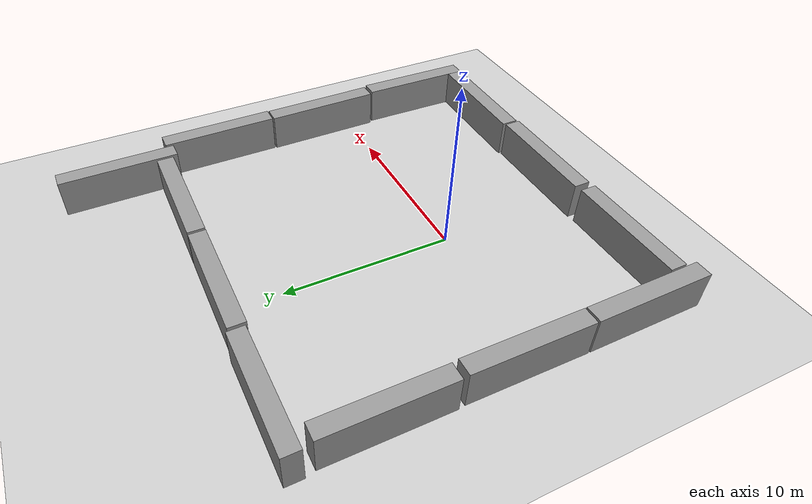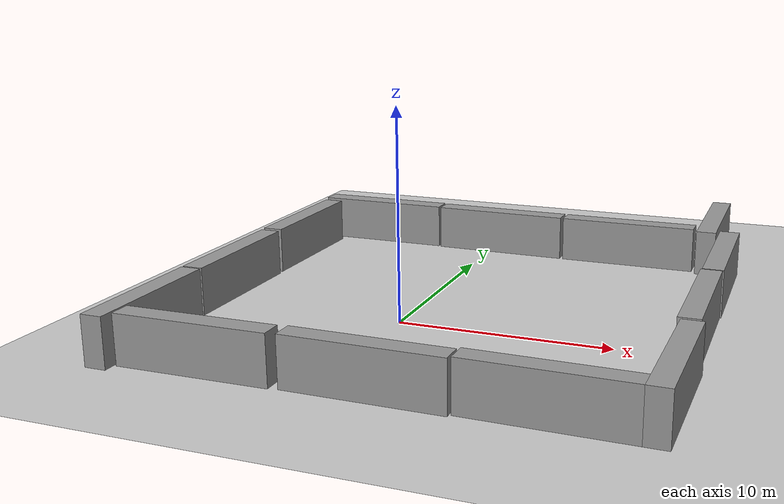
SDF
<sdf version="1.6">
 <world name="default">
  <light name="sun" type="directional">
   <pose>0 0 10 0 -0 0</pose>
   <diffuse>0.8 0.8 0.8 1</diffuse>
   <specular>0.2 0.2 0.2 1</specular>
   <attenuation>
    <range>1000</range>
    <constant>0.9</constant>
    <linear>0.01</linear>
    <quadratic>0.001</quadratic>
   </attenuation>
   <direction>-0.5 0.1 -0.9</direction>
  </light>
  <model name="ground_plane">
   <static>1</static>
   <link name="link">
    <collision name="collision">
     <geometry><plane><normal>0 0 1</normal><size>100 100</size></plane></geometry>
     <surface><friction><ode><mu>100</mu><mu2>50</mu2></ode></friction></surface>
    </collision>
    <visual name="visual">
     <cast_shadows>0</cast_shadows>
     <geometry><plane><normal>0 0 1</normal><size>100 100</size></plane></geometry>
     <material>
      <script><uri>file://media/materials/scripts/gazebo.material</uri><name>Gazebo/Grey</name></script>
     </material>
    </visual>
   </link>
  </model>
  <gravity>0 0 -9.8</gravity>
  <magnetic_field>6e-06 2.3e-05 -4.2e-05</magnetic_field>
  <atmosphere type="adiabatic"/>
  <physics name="default_physics" default="0" type="ode">
   <max_step_size>0.001</max_step_size>
   <real_time_factor>1</real_time_factor>
   <real_time_update_rate>1000</real_time_update_rate>
  </physics>
  <scene><ambient>0.4 0.4 0.4 1</ambient><background>0.7 0.7 0.7 1</background><shadows>1</shadows></scene>
  <spherical_coordinates>
   <surface_model>EARTH_WGS84</surface_model>
   <latitude_deg>0</latitude_deg>
   <longitude_deg>0</longitude_deg>
   <elevation>0</elevation>
   <heading_deg>0</heading_deg>
  </spherical_coordinates>
  <model name="unit_box_clone">
   <pose>-5.35123 -8.31674 1.1506 -8e-06 -0.001722 0.004809</pose>
   <link name="link">
    <inertial>
     <mass>1</mass>
     <inertia>
      <ixx>0.166667</ixx>
      <ixy>0</ixy>
      <ixz>0</ixz>
      <iyy>0.166667</iyy>
      <iyz>0</iyz>
      <izz>0.166667</izz>
     </inertia>
    </inertial>
    <collision name="collision"><geometry><box><size>7.07972 1 2.31337</size></box></geometry></collision>
    <visual name="visual">
     <geometry><box><size>7.07972 1 2.31337</size></box></geometry>
     <material>
      <script><name>Gazebo/Grey</name><uri>file://media/materials/scripts/gazebo.material</uri></script>
     </material>
    </visual>
   </link>
  </model>
  <model name="unit_box_clone_clone">
   <pose>2.14135 -8.23071 1.1506 -8e-06 0.001722 -0.004809</pose>
   <link name="link">
    <inertial>
     <mass>1</mass>
     <inertia>
      <ixx>0.166667</ixx>
      <ixy>0</ixy>
      <ixz>0</ixz>
      <iyy>0.166667</iyy>
      <iyz>0</iyz>
      <izz>0.166667</izz>
     </inertia>
    </inertial>
    <collision name="collision"><geometry><box><size>7.07972 1 2.31337</size></box></geometry></collision>
    <visual name="visual">
     <geometry><box><size>7.07972 1 2.31337</size></box></geometry>
     <material>
      <script><name>Gazebo/Grey</name><uri>file://media/materials/scripts/gazebo.material</uri></script>
     </material>
    </visual>
   </link>
  </model>
  <model name="unit_box_clone_clone_0">
   <pose>9.32777 -8.15869 1.15063 -4.5e-05 0.001723 -0.013007</pose>
   <link name="link">
    <inertial>
     <mass>1</mass>
     <inertia>
      <ixx>0.166667</ixx>
      <ixy>0</ixy>
      <ixz>0</ixz>
      <iyy>0.166667</iyy>
      <iyz>0</iyz>
      <izz>0.166667</izz>
     </inertia>
    </inertial>
    <collision name="collision"><geometry><box><size>7.07972 1 2.31337</size></box></geometry></collision>
    <visual name="visual">
     <geometry><box><size>7.07972 1 2.31337</size></box></geometry>
     <material>
      <script><name>Gazebo/Grey</name><uri>file://media/materials/scripts/gazebo.material</uri></script>
     </material>
    </visual>
   </link>
  </model>
  <model name="unit_box_clone_clone_1">
   <pose>-9.50666 -5.86673 1.1506 8e-06 0.001722 1.5753</pose>
   <link name="link">
    <inertial>
     <mass>1</mass>
     <inertia>
      <ixx>0.166667</ixx>
      <ixy>0</ixy>
      <ixz>0</ixz>
      <iyy>0.166667</iyy>
      <iyz>0</iyz>
      <izz>0.166667</izz>
     </inertia>
    </inertial>
    <collision name="collision"><geometry><box><size>7.07972 1 2.31337</size></box></geometry></collision>
    <visual name="visual">
     <geometry><box><size>7.07972 1 2.31337</size></box></geometry>
     <material>
      <script><name>Gazebo/Grey</name><uri>file://media/materials/scripts/gazebo.material</uri></script>
     </material>
    </visual>
   </link>
  </model>
  <model name="unit_box_clone_clone_1_clone">
   <pose>-9.5081 1.32691 1.1506 8e-06 -0.001722 1.56629</pose>
   <link name="link">
    <inertial>
     <mass>1</mass>
     <inertia>
      <ixx>0.166667</ixx>
      <ixy>0</ixy>
      <ixz>0</ixz>
      <iyy>0.166667</iyy>
      <iyz>0</iyz>
      <izz>0.166667</izz>
     </inertia>
    </inertial>
    <collision name="collision"><geometry><box><size>7.07972 1 2.31337</size></box></geometry></collision>
    <visual name="visual">
     <geometry><box><size>7.07972 1 2.31337</size></box></geometry>
     <material>
      <script><name>Gazebo/Grey</name><uri>file://media/materials/scripts/gazebo.material</uri></script>
     </material>
    </visual>
   </link>
  </model>
  <model name="unit_box_clone_clone_1_clone_0">
   <pose>-9.53119 8.75716 1.1506 -8e-06 0.001722 1.56629</pose>
   <link name="link">
    <inertial>
     <mass>1</mass>
     <inertia>
      <ixx>0.166667</ixx>
      <ixy>0</ixy>
      <ixz>0</ixz>
      <iyy>0.166667</iyy>
      <iyz>0</iyz>
      <izz>0.166667</izz>
     </inertia>
    </inertial>
    <collision name="collision"><geometry><box><size>7.07972 1 2.31337</size></box></geometry></collision>
    <visual name="visual">
     <geometry><box><size>7.07972 1 2.31337</size></box></geometry>
     <material>
      <script><name>Gazebo/Grey</name><uri>file://media/materials/scripts/gazebo.material</uri></script>
     </material>
    </visual>
   </link>
  </model>
  <model name="unit_box_clone_clone_1_clone_1">
   <pose>-6.6159 13.3333 1.1506 -8e-06 -0.001722 -3.13678</pose>
   <link name="link">
    <inertial>
     <mass>1</mass>
     <inertia>
      <ixx>0.166667</ixx>
      <ixy>0</ixy>
      <ixz>0</ixz>
      <iyy>0.166667</iyy>
      <iyz>0</iyz>
      <izz>0.166667</izz>
     </inertia>
    </inertial>
    <collision name="collision"><geometry><box><size>7.07972 1 2.31337</size></box></geometry></collision>
    <visual name="visual">
     <geometry><box><size>7.07972 1 2.31337</size></box></geometry>
     <material>
      <script><name>Gazebo/Grey</name><uri>file://media/materials/scripts/gazebo.material</uri></script>
     </material>
    </visual>
   </link>
  </model>
  <model name="unit_box_clone_clone_1_clone_1_clone">
   <pose>0.629379 13.2161 1.1506 8e-06 -0.001722 3.13678</pose>
   <link name="link">
    <inertial>
     <mass>1</mass>
     <inertia>
      <ixx>0.166667</ixx>
      <ixy>0</ixy>
      <ixz>0</ixz>
      <iyy>0.166667</iyy>
      <iyz>0</iyz>
      <izz>0.166667</izz>
     </inertia>
    </inertial>
    <collision name="collision"><geometry><box><size>7.07972 1 2.31337</size></box></geometry></collision>
    <visual name="visual">
     <geometry><box><size>7.07972 1 2.31337</size></box></geometry>
     <material>
      <script><name>Gazebo/Grey</name><uri>file://media/materials/scripts/gazebo.material</uri></script>
     </material>
    </visual>
   </link>
  </model>
  <model name="unit_box_clone_clone_1_clone_1_clone_0">
   <pose>7.87735 13.177 1.1506 -8e-06 0.001722 3.13678</pose>
   <link name="link">
    <inertial>
     <mass>1</mass>
     <inertia>
      <ixx>0.166667</ixx>
      <ixy>0</ixy>
      <ixz>0</ixz>
      <iyy>0.166667</iyy>
      <iyz>0</iyz>
      <izz>0.166667</izz>
     </inertia>
    </inertial>
    <collision name="collision"><geometry><box><size>7.07972 1 2.31337</size></box></geometry></collision>
    <visual name="visual">
     <geometry><box><size>7.07972 1 2.31337</size></box></geometry>
     <material>
      <script><name>Gazebo/Grey</name><uri>file://media/materials/scripts/gazebo.material</uri></script>
     </material>
    </visual>
   </link>
  </model>
  <model name="unit_box_clone_clone_1_clone_1_clone_1">
   <pose>13.4049 -5.17691 1.15061 -4.6e-05 0.001727 -1.58381</pose>
   <link name="link">
    <inertial>
     <mass>1</mass>
     <inertia>
      <ixx>0.166667</ixx>
      <ixy>0</ixy>
      <ixz>0</ixz>
      <iyy>0.166667</iyy>
      <iyz>0</iyz>
      <izz>0.166667</izz>
     </inertia>
    </inertial>
    <collision name="collision"><geometry><box><size>7.07972 1 2.31337</size></box></geometry></collision>
    <visual name="visual">
     <geometry><box><size>7.07972 1 2.31337</size></box></geometry>
     <material>
      <script><name>Gazebo/Grey</name><uri>file://media/materials/scripts/gazebo.material</uri></script>
     </material>
    </visual>
   </link>
  </model>
  <model name="unit_box_clone_clone_1_clone_1_clone_1_clone">
   <pose>13.2681 2.09369 1.1506 -8e-06 -0.001722 -1.56629</pose>
   <link name="link">
    <inertial>
     <mass>1</mass>
     <inertia>
      <ixx>0.166667</ixx>
      <ixy>0</ixy>
      <ixz>0</ixz>
      <iyy>0.166667</iyy>
      <iyz>0</iyz>
      <izz>0.166667</izz>
     </inertia>
    </inertial>
    <collision name="collision"><geometry><box><size>7.07972 1 2.31337</size></box></geometry></collision>
    <visual name="visual">
     <geometry><box><size>7.07972 1 2.31337</size></box></geometry>
     <material>
      <script><name>Gazebo/Grey</name><uri>file://media/materials/scripts/gazebo.material</uri></script>
     </material>
    </visual>
   </link>
  </model>
  <model name="unit_box_clone_clone_1_clone_1_clone_1_clone_0">
   <pose>13.2938 9.26428 1.1506 8e-06 0.001722 -1.56629</pose>
   <link name="link">
    <inertial>
     <mass>1</mass>
     <inertia>
      <ixx>0.166667</ixx>
      <ixy>0</ixy>
      <ixz>0</ixz>
      <iyy>0.166667</iyy>
      <iyz>0</iyz>
      <izz>0.166667</izz>
     </inertia>
    </inertial>
    <collision name="collision"><geometry><box><size>7.07972 1 2.31337</size></box></geometry></collision>
    <visual name="visual">
     <geometry><box><size>7.07972 1 2.31337</size></box></geometry>
     <material>
      <script><name>Gazebo/Grey</name><uri>file://media/materials/scripts/gazebo.material</uri></script>
     </material>
    </visual>
   </link>
  </model>
  <model name="unit_box_clone_clone_1_clone_1_clone_1_clone_1">
   <pose>12.1004 15.9008 1.1506 8e-06 0.001722 -1.56629</pose>
   <link name="link">
    <inertial>
     <mass>1</mass>
     <inertia>
      <ixx>0.166667</ixx>
      <ixy>0</ixy>
      <ixz>0</ixz>
      <iyy>0.166667</iyy>
      <iyz>0</iyz>
      <izz>0.166667</izz>
     </inertia>
    </inertial>
    <collision name="collision"><geometry><box><size>7.07972 1 2.31337</size></box></geometry></collision>
    <visual name="visual">
     <geometry><box><size>7.07972 1 2.31337</size></box></geometry>
     <material>
      <script><name>Gazebo/Grey</name><uri>file://media/materials/scripts/gazebo.material</uri></script>
     </material>
    </visual>
   </link>
  </model>
 </world>
</sdf>
